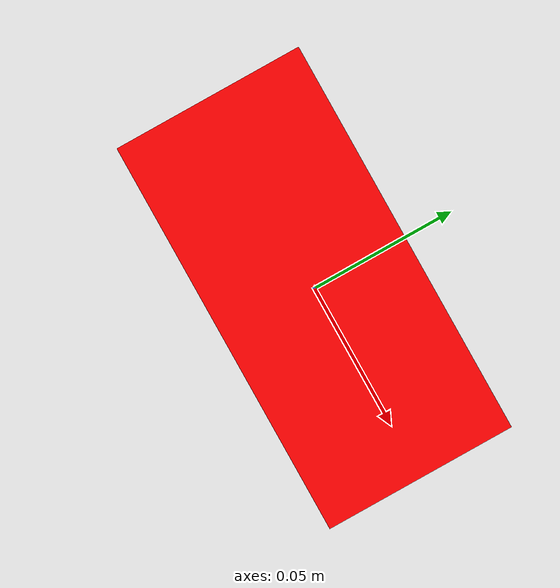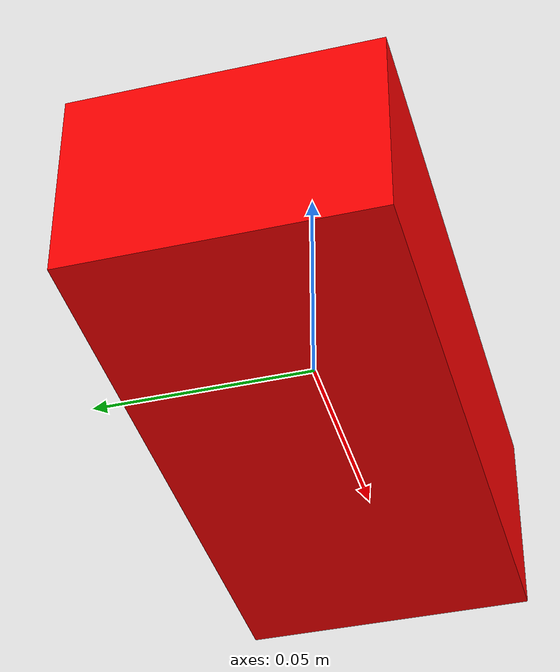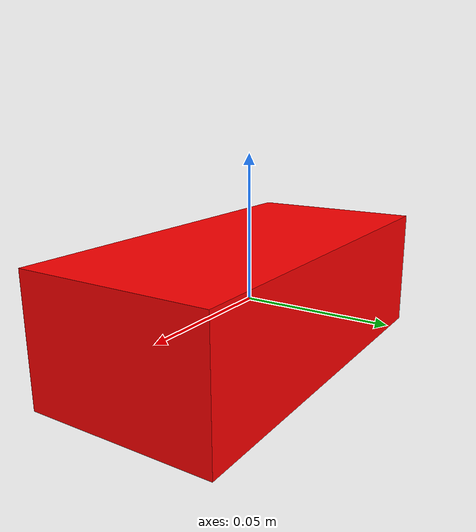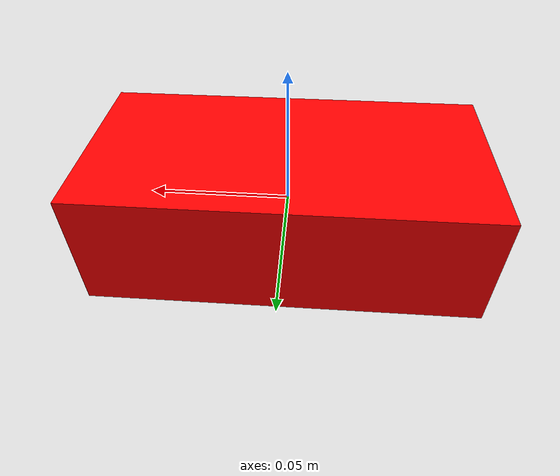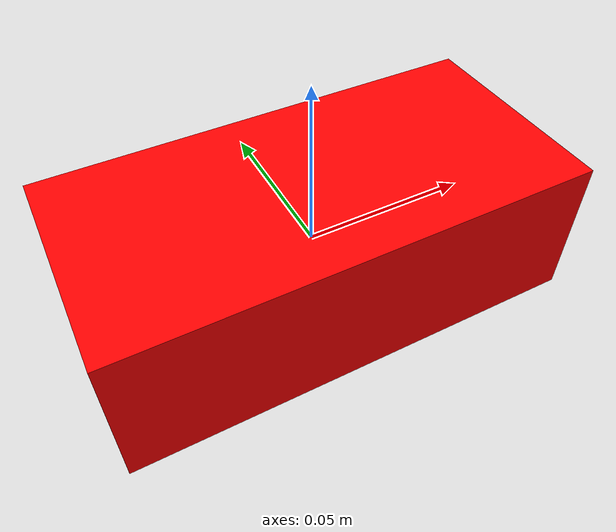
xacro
<?xml version="1.0"?>
<robot name="box">

  <material name="red">
    <color rgba="1 0 0 1"/>
  </material>

  <link name="base_link">
    <visual>
      <geometry>
        <box size="0.136 0.065 0.044"/>
      </geometry>
      <material name="red"/>
    </visual>
     <collision>
      <geometry>
        <box size="0.136 0.065 0.044"/>
      </geometry>
    </collision>
  </link>

  <link name="inertia">
      <visual>
      <geometry>
        <box size="0.01 0.01 0.01"/>
      </geometry>
      <material name="red"/>
    </visual>

    <inertial>
      <origin xyz="0.0 0.0 0.0"/> <!-- should mean center of geometry? -->
      <mass value="0.249"/>
      <inertia ixx="0.000423964" ixy="0.0" ixz="0.0" iyy="0.00047146" iyz="0.0" izz="0.00012784075"/>
    </inertial>
  </link>

  <joint name="base_to_inertia" type="fixed">
    <parent link="base_link"/>
    <child link="inertia"/>
  </joint>

  <!-- Gazebo plugin for ROS Control -->
  <gazebo>
    <plugin name="gazebo_ros_control" filename="libgazebo_ros_control.so">
      <robotNamespace>/biosentry</robotNamespace>
    </plugin>
  </gazebo>

</robot>
